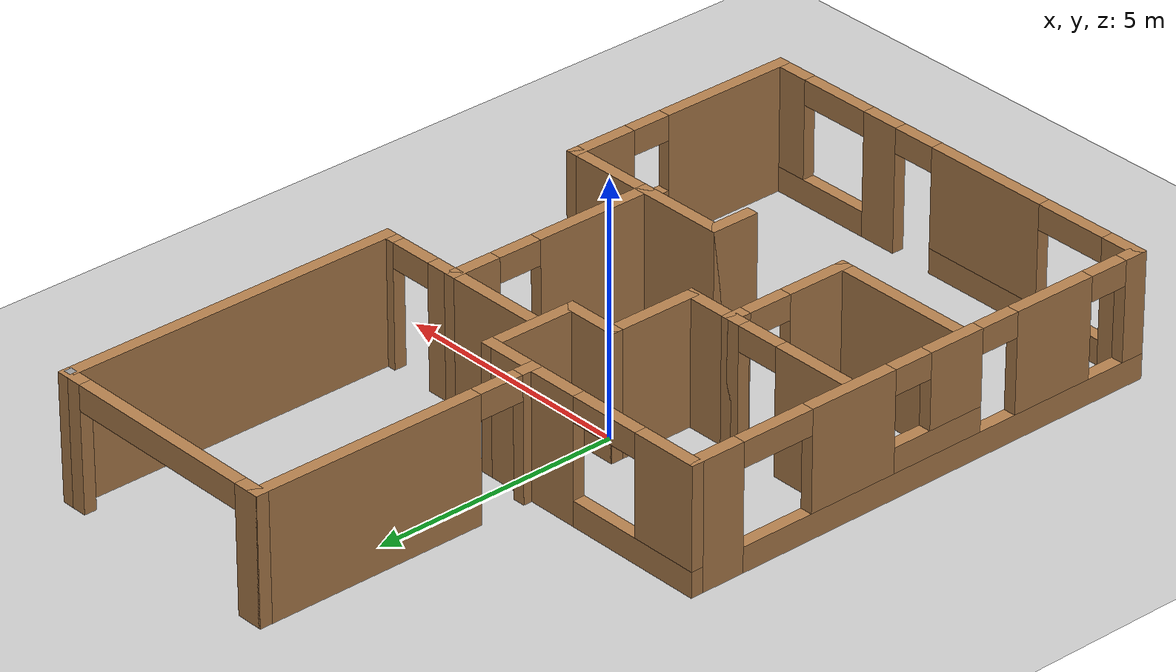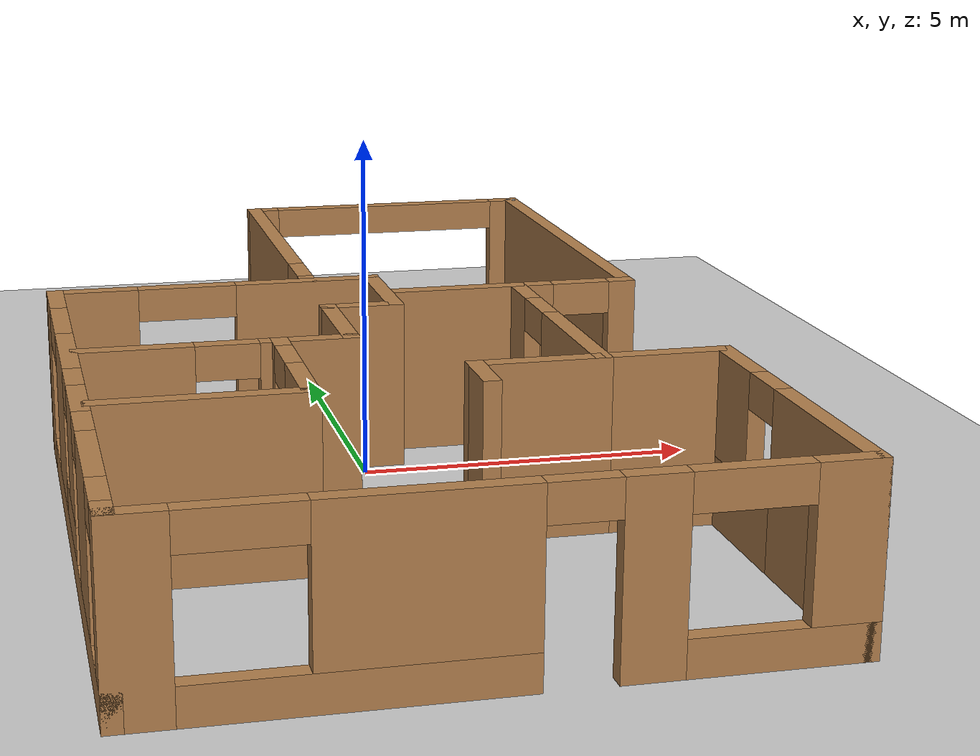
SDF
<sdf version="1.6">
 <world name="default">
  <model name="ground_plane">
   <static>1</static>
   <link name="link">
    <collision name="collision">
     <geometry><plane><normal>0 0 1</normal><size>100 100</size></plane></geometry>
     <surface><friction><ode><mu>100</mu><mu2>50</mu2></ode></friction></surface>
    </collision>
    <visual name="visual">
     <cast_shadows>0</cast_shadows>
     <geometry><plane><normal>0 0 1</normal><size>100 100</size></plane></geometry>
     <material>
      <script><uri>file://media/materials/scripts/gazebo.material</uri><name>Gazebo/Grey</name></script>
     </material>
    </visual>
   </link>
  </model>
  <model name="mybuilding">
   <link name="Wall_0">
    <pose>1.95 7.875 0 0 -0 3.14159</pose>
    <visual name="Wall_0_Visual_0">
     <pose>-2.27407 0 1.25 0 -0 0</pose>
     <geometry><box><size>0.551856 0.25 2.5</size></box></geometry>
     <material>
      <script><uri>file://media/materials/scripts/gazebo.material</uri><name>Gazebo/Wood</name></script>
      <ambient>1 1 1 1</ambient>
     </material>
     <meta><layer>0</layer></meta>
    </visual>
    <collision name="Wall_0_Collision_0">
     <geometry><box><size>0.551856 0.25 2.5</size></box></geometry>
     <pose>-2.27407 0 1.25 0 -0 0</pose>
    </collision>
    <visual name="Wall_0_Visual_1">
     <pose>2.27593 0 1.25 0 -0 0</pose>
     <geometry><box><size>0.548144 0.25 2.5</size></box></geometry>
     <material>
      <script><uri>file://media/materials/scripts/gazebo.material</uri><name>Gazebo/Wood</name></script>
      <ambient>1 1 1 1</ambient>
     </material>
     <meta><layer>0</layer></meta>
    </visual>
    <collision name="Wall_0_Collision_1">
     <geometry><box><size>0.548144 0.25 2.5</size></box></geometry>
     <pose>2.27593 0 1.25 0 -0 0</pose>
    </collision>
    <visual name="Wall_0_Visual_2">
     <pose>0.001856 0 2.25 0 -0 0</pose>
     <geometry><box><size>4 0.25 0.5</size></box></geometry>
     <material>
      <script><uri>file://media/materials/scripts/gazebo.material</uri><name>Gazebo/Wood</name></script>
      <ambient>1 1 1 1</ambient>
     </material>
     <meta><layer>0</layer></meta>
    </visual>
    <collision name="Wall_0_Collision_2">
     <geometry><box><size>4 0.25 0.5</size></box></geometry>
     <pose>0.001856 0 2.25 0 -0 0</pose>
    </collision>
   </link>
   <link name="Wall_1">
    <pose>-0.475 5 0 0 0 -1.5708</pose>
    <visual name="Wall_1_Visual_0">
     <pose>-0.6625 0 1.25 0 -0 0</pose>
     <geometry><box><size>4.675 0.25 2.5</size></box></geometry>
     <material>
      <script><uri>file://media/materials/scripts/gazebo.material</uri><name>Gazebo/Wood</name></script>
      <ambient>1 1 1 1</ambient>
     </material>
     <meta><layer>0</layer></meta>
    </visual>
    <collision name="Wall_1_Collision_0">
     <geometry><box><size>4.675 0.25 2.5</size></box></geometry>
     <pose>-0.6625 0 1.25 0 -0 0</pose>
    </collision>
    <visual name="Wall_1_Visual_1">
     <pose>2.7875 0 1.25 0 -0 0</pose>
     <geometry><box><size>0.425 0.25 2.5</size></box></geometry>
     <material>
      <script><uri>file://media/materials/scripts/gazebo.material</uri><name>Gazebo/Wood</name></script>
      <ambient>1 1 1 1</ambient>
     </material>
     <meta><layer>0</layer></meta>
    </visual>
    <collision name="Wall_1_Collision_1">
     <geometry><box><size>0.425 0.25 2.5</size></box></geometry>
     <pose>2.7875 0 1.25 0 -0 0</pose>
    </collision>
    <visual name="Wall_1_Visual_2">
     <pose>2.125 0 2.25 0 -0 0</pose>
     <geometry><box><size>0.9 0.25 0.5</size></box></geometry>
     <material>
      <script><uri>file://media/materials/scripts/gazebo.material</uri><name>Gazebo/Wood</name></script>
      <ambient>1 1 1 1</ambient>
     </material>
     <meta><layer>0</layer></meta>
    </visual>
    <collision name="Wall_1_Collision_2">
     <geometry><box><size>0.9 0.25 0.5</size></box></geometry>
     <pose>2.125 0 2.25 0 -0 0</pose>
    </collision>
   </link>
   <link name="Wall_10">
    <pose>-4.375 -2.875 0 0 0 -1.5708</pose>
    <visual name="Wall_10_Visual_0">
     <pose>-4.56217 0 1.25 0 -0 0</pose>
     <geometry><box><size>1.12566 0.25 2.5</size></box></geometry>
     <material>
      <script><uri>file://media/materials/scripts/gazebo.material</uri><name>Gazebo/Wood</name></script>
      <ambient>1 1 1 1</ambient>
     </material>
     <meta><layer>0</layer></meta>
    </visual>
    <collision name="Wall_10_Collision_0">
     <geometry><box><size>1.12566 0.25 2.5</size></box></geometry>
     <pose>-4.56217 0 1.25 0 -0 0</pose>
    </collision>
    <visual name="Wall_10_Visual_1">
     <pose>0.562832 0 0.25 0 -0 0</pose>
     <geometry><box><size>9.12434 0.25 0.5</size></box></geometry>
     <material>
      <script><uri>file://media/materials/scripts/gazebo.material</uri><name>Gazebo/Wood</name></script>
      <ambient>1 1 1 1</ambient>
     </material>
     <meta><layer>0</layer></meta>
    </visual>
    <collision name="Wall_10_Collision_1">
     <geometry><box><size>9.12434 0.25 0.5</size></box></geometry>
     <pose>0.562832 0 0.25 0 -0 0</pose>
    </collision>
    <visual name="Wall_10_Visual_2">
     <pose>-1.57467 0 1.5 0 -0 0</pose>
     <geometry><box><size>1.84934 0.25 2</size></box></geometry>
     <material>
      <script><uri>file://media/materials/scripts/gazebo.material</uri><name>Gazebo/Wood</name></script>
      <ambient>1 1 1 1</ambient>
     </material>
     <meta><layer>0</layer></meta>
    </visual>
    <collision name="Wall_10_Collision_2">
     <geometry><box><size>1.84934 0.25 2</size></box></geometry>
     <pose>-1.57467 0 1.5 0 -0 0</pose>
    </collision>
    <visual name="Wall_10_Visual_3">
     <pose>2.98281 0 1.5 0 -0 0</pose>
     <geometry><box><size>1.72544 0.25 2</size></box></geometry>
     <material>
      <script><uri>file://media/materials/scripts/gazebo.material</uri><name>Gazebo/Wood</name></script>
      <ambient>1 1 1 1</ambient>
     </material>
     <meta><layer>0</layer></meta>
    </visual>
    <collision name="Wall_10_Collision_3">
     <geometry><box><size>1.72544 0.25 2</size></box></geometry>
     <pose>2.98281 0 1.5 0 -0 0</pose>
    </collision>
    <visual name="Wall_10_Visual_4">
     <pose>4.88526 0 1.5 0 -0 0</pose>
     <geometry><box><size>0.479475 0.25 2</size></box></geometry>
     <material>
      <script><uri>file://media/materials/scripts/gazebo.material</uri><name>Gazebo/Wood</name></script>
      <ambient>1 1 1 1</ambient>
     </material>
     <meta><layer>0</layer></meta>
    </visual>
    <collision name="Wall_10_Collision_4">
     <geometry><box><size>0.479475 0.25 2</size></box></geometry>
     <pose>4.88526 0 1.5 0 -0 0</pose>
    </collision>
    <visual name="Wall_10_Visual_5">
     <pose>0.335043 0 0.75 0 -0 0</pose>
     <geometry><box><size>1.97009 0.25 0.5</size></box></geometry>
     <material>
      <script><uri>file://media/materials/scripts/gazebo.material</uri><name>Gazebo/Wood</name></script>
      <ambient>1 1 1 1</ambient>
     </material>
     <meta><layer>0</layer></meta>
    </visual>
    <collision name="Wall_10_Collision_5">
     <geometry><box><size>1.97009 0.25 0.5</size></box></geometry>
     <pose>0.335043 0 0.75 0 -0 0</pose>
    </collision>
    <visual name="Wall_10_Visual_6">
     <pose>0.735043 0 1.75 0 -0 0</pose>
     <geometry><box><size>1.17009 0.25 1.5</size></box></geometry>
     <material>
      <script><uri>file://media/materials/scripts/gazebo.material</uri><name>Gazebo/Wood</name></script>
      <ambient>1 1 1 1</ambient>
     </material>
     <meta><layer>0</layer></meta>
    </visual>
    <collision name="Wall_10_Collision_6">
     <geometry><box><size>1.17009 0.25 1.5</size></box></geometry>
     <pose>0.735043 0 1.75 0 -0 0</pose>
    </collision>
    <visual name="Wall_10_Visual_7">
     <pose>-3.24934 0 2.25 0 -0 0</pose>
     <geometry><box><size>1.5 0.25 0.5</size></box></geometry>
     <material>
      <script><uri>file://media/materials/scripts/gazebo.material</uri><name>Gazebo/Wood</name></script>
      <ambient>1 1 1 1</ambient>
     </material>
     <meta><layer>0</layer></meta>
    </visual>
    <collision name="Wall_10_Collision_7">
     <geometry><box><size>1.5 0.25 0.5</size></box></geometry>
     <pose>-3.24934 0 2.25 0 -0 0</pose>
    </collision>
    <visual name="Wall_10_Visual_8">
     <pose>-0.25 0 2.25 0 -0 0</pose>
     <geometry><box><size>0.8 0.25 0.5</size></box></geometry>
     <material>
      <script><uri>file://media/materials/scripts/gazebo.material</uri><name>Gazebo/Wood</name></script>
      <ambient>1 1 1 1</ambient>
     </material>
     <meta><layer>0</layer></meta>
    </visual>
    <collision name="Wall_10_Collision_8">
     <geometry><box><size>0.8 0.25 0.5</size></box></geometry>
     <pose>-0.25 0 2.25 0 -0 0</pose>
    </collision>
    <visual name="Wall_10_Visual_9">
     <pose>4.24552 0 2.25 0 -0 0</pose>
     <geometry><box><size>0.8 0.25 0.5</size></box></geometry>
     <material>
      <script><uri>file://media/materials/scripts/gazebo.material</uri><name>Gazebo/Wood</name></script>
      <ambient>1 1 1 1</ambient>
     </material>
     <meta><layer>0</layer></meta>
    </visual>
    <collision name="Wall_10_Collision_9">
     <geometry><box><size>0.8 0.25 0.5</size></box></geometry>
     <pose>4.24552 0 2.25 0 -0 0</pose>
    </collision>
    <visual name="Wall_10_Visual_10">
     <pose>1.72009 0 2.25 0 -0 0</pose>
     <geometry><box><size>0.8 0.25 0.5</size></box></geometry>
     <material>
      <script><uri>file://media/materials/scripts/gazebo.material</uri><name>Gazebo/Wood</name></script>
      <ambient>1 1 1 1</ambient>
     </material>
     <meta><layer>0</layer></meta>
    </visual>
    <collision name="Wall_10_Collision_10">
     <geometry><box><size>0.8 0.25 0.5</size></box></geometry>
     <pose>1.72009 0 2.25 0 -0 0</pose>
    </collision>
   </link>
   <link name="Wall_11">
    <pose>0 -7.875 0 0 -0 0</pose>
    <visual name="Wall_11_Visual_0">
     <pose>-4.09506 0 1.25 0 -0 0</pose>
     <geometry><box><size>0.809873 0.25 2.5</size></box></geometry>
     <material>
      <script><uri>file://media/materials/scripts/gazebo.material</uri><name>Gazebo/Wood</name></script>
      <ambient>1 1 1 1</ambient>
     </material>
     <meta><layer>0</layer></meta>
    </visual>
    <collision name="Wall_11_Collision_0">
     <geometry><box><size>0.809873 0.25 2.5</size></box></geometry>
     <pose>-4.09506 0 1.25 0 -0 0</pose>
    </collision>
    <visual name="Wall_11_Visual_1">
     <pose>1.7214 0 1.25 0 -0 0</pose>
     <geometry><box><size>0.792805 0.25 2.5</size></box></geometry>
     <material>
      <script><uri>file://media/materials/scripts/gazebo.material</uri><name>Gazebo/Wood</name></script>
      <ambient>1 1 1 1</ambient>
     </material>
     <meta><layer>0</layer></meta>
    </visual>
    <collision name="Wall_11_Collision_1">
     <geometry><box><size>0.792805 0.25 2.5</size></box></geometry>
     <pose>1.7214 0 1.25 0 -0 0</pose>
    </collision>
    <visual name="Wall_11_Visual_2">
     <pose>-1.63256 0 0.25 0 -0 0</pose>
     <geometry><box><size>4.11513 0.25 0.5</size></box></geometry>
     <material>
      <script><uri>file://media/materials/scripts/gazebo.material</uri><name>Gazebo/Wood</name></script>
      <ambient>1 1 1 1</ambient>
     </material>
     <meta><layer>0</layer></meta>
    </visual>
    <collision name="Wall_11_Collision_2">
     <geometry><box><size>4.11513 0.25 0.5</size></box></geometry>
     <pose>-1.63256 0 0.25 0 -0 0</pose>
    </collision>
    <visual name="Wall_11_Visual_3">
     <pose>3.3089 0 0.25 0 -0 0</pose>
     <geometry><box><size>2.38219 0.25 0.5</size></box></geometry>
     <material>
      <script><uri>file://media/materials/scripts/gazebo.material</uri><name>Gazebo/Wood</name></script>
      <ambient>1 1 1 1</ambient>
     </material>
     <meta><layer>0</layer></meta>
    </visual>
    <collision name="Wall_11_Collision_3">
     <geometry><box><size>2.38219 0.25 0.5</size></box></geometry>
     <pose>3.3089 0 0.25 0 -0 0</pose>
    </collision>
    <visual name="Wall_11_Visual_4">
     <pose>-0.882564 0 1.5 0 -0 0</pose>
     <geometry><box><size>2.61513 0.25 2</size></box></geometry>
     <material>
      <script><uri>file://media/materials/scripts/gazebo.material</uri><name>Gazebo/Wood</name></script>
      <ambient>1 1 1 1</ambient>
     </material>
     <meta><layer>0</layer></meta>
    </visual>
    <collision name="Wall_11_Collision_4">
     <geometry><box><size>2.61513 0.25 2</size></box></geometry>
     <pose>-0.882564 0 1.5 0 -0 0</pose>
    </collision>
    <visual name="Wall_11_Visual_5">
     <pose>-0.882564 0 1.5 0 -0 0</pose>
     <geometry><box><size>2.61513 0.25 2</size></box></geometry>
     <material>
      <script><uri>file://media/materials/scripts/gazebo.material</uri><name>Gazebo/Wood</name></script>
      <ambient>1 1 1 1</ambient>
     </material>
     <meta><layer>0</layer></meta>
    </visual>
    <collision name="Wall_11_Collision_5">
     <geometry><box><size>2.61513 0.25 2</size></box></geometry>
     <pose>-0.882564 0 1.5 0 -0 0</pose>
    </collision>
    <visual name="Wall_11_Visual_6">
     <pose>4.0589 0 1.5 0 -0 0</pose>
     <geometry><box><size>0.882195 0.25 2</size></box></geometry>
     <material>
      <script><uri>file://media/materials/scripts/gazebo.material</uri><name>Gazebo/Wood</name></script>
      <ambient>1 1 1 1</ambient>
     </material>
     <meta><layer>0</layer></meta>
    </visual>
    <collision name="Wall_11_Collision_6">
     <geometry><box><size>0.882195 0.25 2</size></box></geometry>
     <pose>4.0589 0 1.5 0 -0 0</pose>
    </collision>
    <visual name="Wall_11_Visual_7">
     <pose>-2.94013 0 2.25 0 -0 0</pose>
     <geometry><box><size>1.5 0.25 0.5</size></box></geometry>
     <material>
      <script><uri>file://media/materials/scripts/gazebo.material</uri><name>Gazebo/Wood</name></script>
      <ambient>1 1 1 1</ambient>
     </material>
     <meta><layer>0</layer></meta>
    </visual>
    <collision name="Wall_11_Collision_7">
     <geometry><box><size>1.5 0.25 0.5</size></box></geometry>
     <pose>-2.94013 0 2.25 0 -0 0</pose>
    </collision>
    <visual name="Wall_11_Visual_8">
     <pose>2.86781 0 2.25 0 -0 0</pose>
     <geometry><box><size>1.5 0.25 0.5</size></box></geometry>
     <material>
      <script><uri>file://media/materials/scripts/gazebo.material</uri><name>Gazebo/Wood</name></script>
      <ambient>1 1 1 1</ambient>
     </material>
     <meta><layer>0</layer></meta>
    </visual>
    <collision name="Wall_11_Collision_8">
     <geometry><box><size>1.5 0.25 0.5</size></box></geometry>
     <pose>2.86781 0 2.25 0 -0 0</pose>
    </collision>
    <visual name="Wall_11_Visual_9">
     <pose>0.875 0 2.25 0 -0 0</pose>
     <geometry><box><size>0.9 0.25 0.5</size></box></geometry>
     <material>
      <script><uri>file://media/materials/scripts/gazebo.material</uri><name>Gazebo/Wood</name></script>
      <ambient>1 1 1 1</ambient>
     </material>
     <meta><layer>0</layer></meta>
    </visual>
    <collision name="Wall_11_Collision_9">
     <geometry><box><size>0.9 0.25 0.5</size></box></geometry>
     <pose>0.875 0 2.25 0 -0 0</pose>
    </collision>
    <visual name="Wall_11_Visual_10">
     <pose>0.875 0 2.25 0 -0 0</pose>
     <geometry><box><size>0.9 0.25 0.5</size></box></geometry>
     <material>
      <script><uri>file://media/materials/scripts/gazebo.material</uri><name>Gazebo/Wood</name></script>
      <ambient>1 1 1 1</ambient>
     </material>
     <meta><layer>0</layer></meta>
    </visual>
    <collision name="Wall_11_Collision_10">
     <geometry><box><size>0.9 0.25 0.5</size></box></geometry>
     <pose>0.875 0 2.25 0 -0 0</pose>
    </collision>
   </link>
   <link name="Wall_12">
    <pose>4.375 -5.5 0 0 -0 1.5708</pose>
    <visual name="Wall_12_Visual_0">
     <pose>-1.06859 0 1.25 0 -0 0</pose>
     <geometry><box><size>2.86282 0.25 2.5</size></box></geometry>
     <material>
      <script><uri>file://media/materials/scripts/gazebo.material</uri><name>Gazebo/Wood</name></script>
      <ambient>1 1 1 1</ambient>
     </material>
     <meta><layer>0</layer></meta>
    </visual>
    <collision name="Wall_12_Collision_0">
     <geometry><box><size>2.86282 0.25 2.5</size></box></geometry>
     <pose>-1.06859 0 1.25 0 -0 0</pose>
    </collision>
    <visual name="Wall_12_Visual_1">
     <pose>1.43141 0 0.5 0 -0 0</pose>
     <geometry><box><size>2.13718 0.25 1</size></box></geometry>
     <material>
      <script><uri>file://media/materials/scripts/gazebo.material</uri><name>Gazebo/Wood</name></script>
      <ambient>1 1 1 1</ambient>
     </material>
     <meta><layer>0</layer></meta>
    </visual>
    <collision name="Wall_12_Collision_1">
     <geometry><box><size>2.13718 0.25 1</size></box></geometry>
     <pose>1.43141 0 0.5 0 -0 0</pose>
    </collision>
    <visual name="Wall_12_Visual_2">
     <pose>1.83141 0 1.75 0 -0 0</pose>
     <geometry><box><size>1.33718 0.25 1.5</size></box></geometry>
     <material>
      <script><uri>file://media/materials/scripts/gazebo.material</uri><name>Gazebo/Wood</name></script>
      <ambient>1 1 1 1</ambient>
     </material>
     <meta><layer>0</layer></meta>
    </visual>
    <collision name="Wall_12_Collision_2">
     <geometry><box><size>1.33718 0.25 1.5</size></box></geometry>
     <pose>1.83141 0 1.75 0 -0 0</pose>
    </collision>
    <visual name="Wall_12_Visual_3">
     <pose>0.762824 0 2.25 0 -0 0</pose>
     <geometry><box><size>0.8 0.25 0.5</size></box></geometry>
     <material>
      <script><uri>file://media/materials/scripts/gazebo.material</uri><name>Gazebo/Wood</name></script>
      <ambient>1 1 1 1</ambient>
     </material>
     <meta><layer>0</layer></meta>
    </visual>
    <collision name="Wall_12_Collision_3">
     <geometry><box><size>0.8 0.25 0.5</size></box></geometry>
     <pose>0.762824 0 2.25 0 -0 0</pose>
    </collision>
   </link>
   <link name="Wall_13">
    <collision name="Wall_13_Collision">
     <geometry><box><size>2 0.25 2.5</size></box></geometry>
     <pose>0 0 1.25 0 -0 0</pose>
    </collision>
    <visual name="Wall_13_Visual">
     <pose>0 0 1.25 0 -0 0</pose>
     <geometry><box><size>2 0.25 2.5</size></box></geometry>
     <material>
      <script><uri>file://media/materials/scripts/gazebo.material</uri><name>Gazebo/Wood</name></script>
      <ambient>1 1 1 1</ambient>
     </material>
     <meta><layer>0</layer></meta>
    </visual>
    <pose>3.5 -3.125 0 0 -0 3.14159</pose>
   </link>
   <link name="Wall_14">
    <pose>2.625 -1 0 0 -0 1.5708</pose>
    <visual name="Wall_14_Visual_0">
     <pose>-0.957655 0 1.25 0 -0 0</pose>
     <geometry><box><size>2.58469 0.25 2.5</size></box></geometry>
     <material>
      <script><uri>file://media/materials/scripts/gazebo.material</uri><name>Gazebo/Wood</name></script>
      <ambient>1 1 1 1</ambient>
     </material>
     <meta><layer>0</layer></meta>
    </visual>
    <collision name="Wall_14_Collision_0">
     <geometry><box><size>2.58469 0.25 2.5</size></box></geometry>
     <pose>-0.957655 0 1.25 0 -0 0</pose>
    </collision>
    <visual name="Wall_14_Visual_1">
     <pose>1.74235 0 1.25 0 -0 0</pose>
     <geometry><box><size>1.01531 0.25 2.5</size></box></geometry>
     <material>
      <script><uri>file://media/materials/scripts/gazebo.material</uri><name>Gazebo/Wood</name></script>
      <ambient>1 1 1 1</ambient>
     </material>
     <meta><layer>0</layer></meta>
    </visual>
    <collision name="Wall_14_Collision_1">
     <geometry><box><size>1.01531 0.25 2.5</size></box></geometry>
     <pose>1.74235 0 1.25 0 -0 0</pose>
    </collision>
    <visual name="Wall_14_Visual_2">
     <pose>0.78469 0 2.25 0 -0 0</pose>
     <geometry><box><size>0.9 0.25 0.5</size></box></geometry>
     <material>
      <script><uri>file://media/materials/scripts/gazebo.material</uri><name>Gazebo/Wood</name></script>
      <ambient>1 1 1 1</ambient>
     </material>
     <meta><layer>0</layer></meta>
    </visual>
    <collision name="Wall_14_Collision_2">
     <geometry><box><size>0.9 0.25 0.5</size></box></geometry>
     <pose>0.78469 0 2.25 0 -0 0</pose>
    </collision>
   </link>
   <link name="Wall_153">
    <pose>-1.475 -2.625 0 0 0 -1.5708</pose>
    <visual name="Wall_153_Visual_0">
     <pose>-1.1625 0 1.25 0 -0 0</pose>
     <geometry><box><size>0.425 0.25 2.5</size></box></geometry>
     <material>
      <script><uri>file://media/materials/scripts/gazebo.material</uri><name>Gazebo/Wood</name></script>
      <ambient>1 1 1 1</ambient>
     </material>
     <meta><layer>0</layer></meta>
    </visual>
    <collision name="Wall_153_Collision_0">
     <geometry><box><size>0.425 0.25 2.5</size></box></geometry>
     <pose>-1.1625 0 1.25 0 -0 0</pose>
    </collision>
    <visual name="Wall_153_Visual_1">
     <pose>0.6625 0 1.25 0 -0 0</pose>
     <geometry><box><size>1.425 0.25 2.5</size></box></geometry>
     <material>
      <script><uri>file://media/materials/scripts/gazebo.material</uri><name>Gazebo/Wood</name></script>
      <ambient>1 1 1 1</ambient>
     </material>
     <meta><layer>0</layer></meta>
    </visual>
    <collision name="Wall_153_Collision_1">
     <geometry><box><size>1.425 0.25 2.5</size></box></geometry>
     <pose>0.6625 0 1.25 0 -0 0</pose>
    </collision>
    <visual name="Wall_153_Visual_2">
     <pose>-0.5 0 2.25 0 -0 0</pose>
     <geometry><box><size>0.9 0.25 0.5</size></box></geometry>
     <material>
      <script><uri>file://media/materials/scripts/gazebo.material</uri><name>Gazebo/Wood</name></script>
      <ambient>1 1 1 1</ambient>
     </material>
     <meta><layer>0</layer></meta>
    </visual>
    <collision name="Wall_153_Collision_2">
     <geometry><box><size>0.9 0.25 0.5</size></box></geometry>
     <pose>-0.5 0 2.25 0 -0 0</pose>
    </collision>
   </link>
   <link name="Wall_154">
    <collision name="Wall_154_Collision">
     <geometry><box><size>3 0.25 2.5</size></box></geometry>
     <pose>0 0 1.25 0 -0 0</pose>
    </collision>
    <visual name="Wall_154_Visual">
     <pose>0 0 1.25 0 -0 0</pose>
     <geometry><box><size>3 0.25 2.5</size></box></geometry>
     <material>
      <script><uri>file://media/materials/scripts/gazebo.material</uri><name>Gazebo/Wood</name></script>
      <ambient>1 1 1 1</ambient>
     </material>
     <meta><layer>0</layer></meta>
    </visual>
    <pose>-2.85 -3.875 0 0 -0 3.14159</pose>
   </link>
   <link name="Wall_156">
    <collision name="Wall_156_Collision">
     <geometry><box><size>2 0.25 2.5</size></box></geometry>
     <pose>0 0 1.25 0 -0 0</pose>
    </collision>
    <visual name="Wall_156_Visual">
     <pose>0 0 1.25 0 -0 0</pose>
     <geometry><box><size>2 0.25 2.5</size></box></geometry>
     <material>
      <script><uri>file://media/materials/scripts/gazebo.material</uri><name>Gazebo/Wood</name></script>
      <ambient>1 1 1 1</ambient>
     </material>
     <meta><layer>0</layer></meta>
    </visual>
    <pose>1.75 -3.125 0 0 -0 3.14159</pose>
   </link>
   <link name="Wall_157">
    <collision name="Wall_157_Collision">
     <geometry><box><size>1 0.25 2.5</size></box></geometry>
     <pose>0 0 1.25 0 -0 0</pose>
    </collision>
    <visual name="Wall_157_Visual">
     <pose>0 0 1.25 0 -0 0</pose>
     <geometry><box><size>1 0.25 2.5</size></box></geometry>
     <material>
      <script><uri>file://media/materials/scripts/gazebo.material</uri><name>Gazebo/Wood</name></script>
      <ambient>1 1 1 1</ambient>
     </material>
     <meta><layer>0</layer></meta>
    </visual>
    <pose>0.875 -3.5 0 0 0 -1.5708</pose>
   </link>
   <link name="Wall_16">
    <collision name="Wall_16_Collision">
     <geometry><box><size>7 0.25 2.5</size></box></geometry>
     <pose>0 0 1.25 0 -0 0</pose>
    </collision>
    <visual name="Wall_16_Visual">
     <pose>0 0 1.25 0 -0 0</pose>
     <geometry><box><size>7 0.25 2.5</size></box></geometry>
     <material>
      <script><uri>file://media/materials/scripts/gazebo.material</uri><name>Gazebo/Wood</name></script>
      <ambient>1 1 1 1</ambient>
     </material>
     <meta><layer>0</layer></meta>
    </visual>
    <pose>4.375 4.5 0 0 -0 1.5708</pose>
   </link>
   <link name="Wall_17">
    <collision name="Wall_17_Collision">
     <geometry><box><size>0.15 0.15 2.5</size></box></geometry>
     <pose>0 0 1.25 0 -0 0</pose>
    </collision>
    <visual name="Wall_17_Visual">
     <pose>0 0 1.25 0 -0 0</pose>
     <geometry><box><size>0.15 0.15 2.5</size></box></geometry>
     <material>
      <script><uri>file://media/materials/scripts/gazebo.material</uri><name>Gazebo/Grey</name></script>
      <ambient>1 1 1 1</ambient>
     </material>
     <meta><layer>0</layer></meta>
    </visual>
    <pose>4.375 7.83421 0 0 -0 0</pose>
   </link>
   <link name="Wall_18">
    <collision name="Wall_18_Collision">
     <geometry><box><size>0.15 0.15 2.5</size></box></geometry>
     <pose>0 0 1.25 0 -0 0</pose>
    </collision>
    <visual name="Wall_18_Visual">
     <pose>0 0 1.25 0 -0 0</pose>
     <geometry><box><size>0.15 0.15 2.5</size></box></geometry>
     <material>
      <script><uri>file://media/materials/scripts/gazebo.material</uri><name>Gazebo/Grey</name></script>
      <ambient>1 1 1 1</ambient>
     </material>
     <meta><layer>0</layer></meta>
    </visual>
    <pose>4.375 7.83421 0 0 -0 0</pose>
   </link>
   <link name="Wall_20">
    <collision name="Wall_20_Collision">
     <geometry><box><size>2 0.25 2.5</size></box></geometry>
     <pose>0 0 1.25 0 -0 0</pose>
    </collision>
    <visual name="Wall_20_Visual">
     <pose>0 0 1.25 0 -0 0</pose>
     <geometry><box><size>2 0.25 2.5</size></box></geometry>
     <material>
      <script><uri>file://media/materials/scripts/gazebo.material</uri><name>Gazebo/Wood</name></script>
      <ambient>1 1 1 1</ambient>
     </material>
     <meta><layer>0</layer></meta>
    </visual>
    <pose>0.525 1.25 0 0 0 -1.5708</pose>
   </link>
   <link name="Wall_22">
    <collision name="Wall_22_Collision">
     <geometry><box><size>2.25 0.25 2.5</size></box></geometry>
     <pose>0 0 1.25 0 -0 0</pose>
    </collision>
    <visual name="Wall_22_Visual">
     <pose>0 0 1.25 0 -0 0</pose>
     <geometry><box><size>2.25 0.25 2.5</size></box></geometry>
     <material>
      <script><uri>file://media/materials/scripts/gazebo.material</uri><name>Gazebo/Wood</name></script>
      <ambient>1 1 1 1</ambient>
     </material>
     <meta><layer>0</layer></meta>
    </visual>
    <pose>1.625 1.125 0 0 -0 3.14159</pose>
   </link>
   <link name="Wall_24">
    <pose>3.5 1.125 0 0 -0 3.14159</pose>
    <visual name="Wall_24_Visual_0">
     <pose>-0.7875 0 1.25 0 -0 0</pose>
     <geometry><box><size>0.425 0.25 2.5</size></box></geometry>
     <material>
      <script><uri>file://media/materials/scripts/gazebo.material</uri><name>Gazebo/Wood</name></script>
      <ambient>1 1 1 1</ambient>
     </material>
     <meta><layer>0</layer></meta>
    </visual>
    <collision name="Wall_24_Collision_0">
     <geometry><box><size>0.425 0.25 2.5</size></box></geometry>
     <pose>-0.7875 0 1.25 0 -0 0</pose>
    </collision>
    <visual name="Wall_24_Visual_1">
     <pose>0.6625 0 1.25 0 -0 0</pose>
     <geometry><box><size>0.675 0.25 2.5</size></box></geometry>
     <material>
      <script><uri>file://media/materials/scripts/gazebo.material</uri><name>Gazebo/Wood</name></script>
      <ambient>1 1 1 1</ambient>
     </material>
     <meta><layer>0</layer></meta>
    </visual>
    <collision name="Wall_24_Collision_1">
     <geometry><box><size>0.675 0.25 2.5</size></box></geometry>
     <pose>0.6625 0 1.25 0 -0 0</pose>
    </collision>
    <visual name="Wall_24_Visual_2">
     <pose>-0.125 0 2.25 0 -0 0</pose>
     <geometry><box><size>0.9 0.25 0.5</size></box></geometry>
     <material>
      <script><uri>file://media/materials/scripts/gazebo.material</uri><name>Gazebo/Wood</name></script>
      <ambient>1 1 1 1</ambient>
     </material>
     <meta><layer>0</layer></meta>
    </visual>
    <collision name="Wall_24_Collision_2">
     <geometry><box><size>0.9 0.25 0.5</size></box></geometry>
     <pose>-0.125 0 2.25 0 -0 0</pose>
    </collision>
   </link>
   <link name="Wall_41">
    <collision name="Wall_41_Collision">
     <geometry><box><size>1.25 0.25 2.5</size></box></geometry>
     <pose>0 0 1.25 0 -0 0</pose>
    </collision>
    <visual name="Wall_41_Visual">
     <pose>0 0 1.25 0 -0 0</pose>
     <geometry><box><size>1.25 0.25 2.5</size></box></geometry>
     <material>
      <script><uri>file://media/materials/scripts/gazebo.material</uri><name>Gazebo/Wood</name></script>
      <ambient>1 1 1 1</ambient>
     </material>
     <meta><layer>0</layer></meta>
    </visual>
    <pose>0.025 0.375 0 0 -0 3.14159</pose>
   </link>
   <link name="Wall_42">
    <collision name="Wall_42_Collision">
     <geometry><box><size>2 0.25 2.5</size></box></geometry>
     <pose>0 0 1.25 0 -0 0</pose>
    </collision>
    <visual name="Wall_42_Visual">
     <pose>0 0 1.25 0 -0 0</pose>
     <geometry><box><size>2 0.25 2.5</size></box></geometry>
     <material>
      <script><uri>file://media/materials/scripts/gazebo.material</uri><name>Gazebo/Wood</name></script>
      <ambient>1 1 1 1</ambient>
     </material>
     <meta><layer>0</layer></meta>
    </visual>
    <pose>-0.475 -0.5 0 0 0 -1.5708</pose>
   </link>
   <link name="Wall_43">
    <pose>-2.35 -1.375 0 0 -0 3.14159</pose>
    <visual name="Wall_43_Visual_0">
     <pose>-1.29229 0 1.25 0 -0 0</pose>
     <geometry><box><size>1.41542 0.25 2.5</size></box></geometry>
     <material>
      <script><uri>file://media/materials/scripts/gazebo.material</uri><name>Gazebo/Wood</name></script>
      <ambient>1 1 1 1</ambient>
     </material>
     <meta><layer>0</layer></meta>
    </visual>
    <collision name="Wall_43_Collision_0">
     <geometry><box><size>1.41542 0.25 2.5</size></box></geometry>
     <pose>-1.29229 0 1.25 0 -0 0</pose>
    </collision>
    <visual name="Wall_43_Visual_1">
     <pose>1.15771 0 1.25 0 -0 0</pose>
     <geometry><box><size>1.68457 0.25 2.5</size></box></geometry>
     <material>
      <script><uri>file://media/materials/scripts/gazebo.material</uri><name>Gazebo/Wood</name></script>
      <ambient>1 1 1 1</ambient>
     </material>
     <meta><layer>0</layer></meta>
    </visual>
    <collision name="Wall_43_Collision_1">
     <geometry><box><size>1.68457 0.25 2.5</size></box></geometry>
     <pose>1.15771 0 1.25 0 -0 0</pose>
    </collision>
    <visual name="Wall_43_Visual_2">
     <pose>-0.134575 0 2.25 0 -0 0</pose>
     <geometry><box><size>0.9 0.25 0.5</size></box></geometry>
     <material>
      <script><uri>file://media/materials/scripts/gazebo.material</uri><name>Gazebo/Wood</name></script>
      <ambient>1 1 1 1</ambient>
     </material>
     <meta><layer>0</layer></meta>
    </visual>
    <collision name="Wall_43_Collision_2">
     <geometry><box><size>0.9 0.25 0.5</size></box></geometry>
     <pose>-0.134575 0 2.25 0 -0 0</pose>
    </collision>
   </link>
   <link name="Wall_9">
    <pose>-1.925 2.125 0 0 -0 3.14159</pose>
    <visual name="Wall_9_Visual_0">
     <pose>-1.4375 0 1.25 0 -0 0</pose>
     <geometry><box><size>2.275 0.25 2.5</size></box></geometry>
     <material>
      <script><uri>file://media/materials/scripts/gazebo.material</uri><name>Gazebo/Wood</name></script>
      <ambient>1 1 1 1</ambient>
     </material>
     <meta><layer>0</layer></meta>
    </visual>
    <collision name="Wall_9_Collision_0">
     <geometry><box><size>2.275 0.25 2.5</size></box></geometry>
     <pose>-1.4375 0 1.25 0 -0 0</pose>
    </collision>
    <visual name="Wall_9_Visual_1">
     <pose>1.1375 0 0.25 0 -0 0</pose>
     <geometry><box><size>2.875 0.25 0.5</size></box></geometry>
     <material>
      <script><uri>file://media/materials/scripts/gazebo.material</uri><name>Gazebo/Wood</name></script>
      <ambient>1 1 1 1</ambient>
     </material>
     <meta><layer>0</layer></meta>
    </visual>
    <collision name="Wall_9_Collision_1">
     <geometry><box><size>2.875 0.25 0.5</size></box></geometry>
     <pose>1.1375 0 0.25 0 -0 0</pose>
    </collision>
    <visual name="Wall_9_Visual_2">
     <pose>1.8875 0 1.5 0 -0 0</pose>
     <geometry><box><size>1.375 0.25 2</size></box></geometry>
     <material>
      <script><uri>file://media/materials/scripts/gazebo.material</uri><name>Gazebo/Wood</name></script>
      <ambient>1 1 1 1</ambient>
     </material>
     <meta><layer>0</layer></meta>
    </visual>
    <collision name="Wall_9_Collision_2">
     <geometry><box><size>1.375 0.25 2</size></box></geometry>
     <pose>1.8875 0 1.5 0 -0 0</pose>
    </collision>
    <visual name="Wall_9_Visual_3">
     <pose>0.45 0 2.25 0 -0 0</pose>
     <geometry><box><size>1.5 0.25 0.5</size></box></geometry>
     <material>
      <script><uri>file://media/materials/scripts/gazebo.material</uri><name>Gazebo/Wood</name></script>
      <ambient>1 1 1 1</ambient>
     </material>
     <meta><layer>0</layer></meta>
    </visual>
    <collision name="Wall_9_Collision_3">
     <geometry><box><size>1.5 0.25 0.5</size></box></geometry>
     <pose>0.45 0 2.25 0 -0 0</pose>
    </collision>
   </link>
   <static>1</static>
  </model>
  <model name="cabinet">
   <static>1</static>
   <link name="cabinet_bottom_plate">
    <inertial>
     <pose>0 0 -1 0 -0 0</pose>
     <inertia><ixx>2.05</ixx><ixy>0</ixy><ixz>0</ixz><iyy>2.05</iyy><iyz>0</iyz><izz>2.05</izz></inertia>
     <mass>25</mass>
    </inertial>
    <collision name="cabinet_bottom_plate_geom">
     <pose>0 0 0.01 0 -0 0</pose>
     <geometry><box><size>0.45 0.45 0.02</size></box></geometry>
    </collision>
    <visual name="cabinet_bottom_plate_geom_visual">
     <pose>0 0 0.01 0 -0 0</pose>
     <geometry><box><size>0.45 0.45 0.02</size></box></geometry>
     <material>
      <script><uri>file://media/materials/scripts/gazebo.material</uri><name>Gazebo/Wood</name></script>
     </material>
    </visual>
    <collision name="cabinet_bottom_plate_geom_cabinet_back_plate">
     <pose>0.235 0 0.51 0 -0 0</pose>
     <geometry><box><size>0.02 0.45 1.02</size></box></geometry>
    </collision>
    <visual name="cabinet_bottom_plate_geom_cabinet_back_plate_visual">
     <pose>0.235 0 0.51 0 -0 0</pose>
     <geometry><box><size>0.02 0.45 1.02</size></box></geometry>
     <material>
      <script><uri>file://media/materials/scripts/gazebo.material</uri><name>Gazebo/Wood</name></script>
     </material>
    </visual>
    <collision name="cabinet_bottom_plate_geom_cabinet_left_plate">
     <pose>0 0.235 0.51 0 -0 0</pose>
     <geometry><box><size>0.45 0.02 1.02</size></box></geometry>
    </collision>
    <visual name="cabinet_bottom_plate_geom_cabinet_left_plate_visual">
     <pose>0 0.235 0.51 0 -0 0</pose>
     <geometry><box><size>0.45 0.02 1.02</size></box></geometry>
     <material>
      <script><uri>file://media/materials/scripts/gazebo.material</uri><name>Gazebo/Wood</name></script>
     </material>
    </visual>
    <collision name="cabinet_bottom_plate_geom_cabinet_middle_plate">
     <pose>0 0 0.51 0 -0 0</pose>
     <geometry><box><size>0.45 0.45 0.02</size></box></geometry>
    </collision>
    <visual name="cabinet_bottom_plate_geom_cabinet_middle_plate_visual">
     <pose>0 0 0.51 0 -0 0</pose>
     <geometry><box><size>0.45 0.45 0.02</size></box></geometry>
     <material>
      <script><uri>file://media/materials/scripts/gazebo.material</uri><name>Gazebo/Wood</name></script>
     </material>
    </visual>
    <collision name="cabinet_bottom_plate_geom_cabinet_right_plate">
     <pose>0 -0.235 0.51 0 -0 0</pose>
     <geometry><box><size>0.45 0.02 1.02</size></box></geometry>
    </collision>
    <visual name="cabinet_bottom_plate_geom_cabinet_right_plate_visual">
     <pose>0 -0.235 0.51 0 -0 0</pose>
     <geometry><box><size>0.45 0.02 1.02</size></box></geometry>
     <material>
      <script><uri>file://media/materials/scripts/gazebo.material</uri><name>Gazebo/Wood</name></script>
     </material>
    </visual>
    <collision name="cabinet_bottom_plate_geom_cabinet_top_plate">
     <pose>0 0 1.01 0 -0 0</pose>
     <geometry><box><size>0.45 0.45 0.02</size></box></geometry>
    </collision>
    <visual name="cabinet_bottom_plate_geom_cabinet_top_plate_visual">
     <pose>0 0 1.01 0 -0 0</pose>
     <geometry><box><size>0.45 0.45 0.02</size></box></geometry>
     <material>
      <script><uri>file://media/materials/scripts/gazebo.material</uri><name>Gazebo/Wood</name></script>
     </material>
    </visual>
   </link>
   <pose>-3.95905 1.30742 0 0 -0 0</pose>
  </model>
  <model name="my_ball">
   <link name="link_0">
    <inertial>
     <mass>1</mass>
     <inertia><ixx>0.1</ixx><ixy>0</ixy><ixz>0</ixz><iyy>0.1</iyy><iyz>0</iyz><izz>0.1</izz></inertia>
    </inertial>
    <visual name="visual">
     <geometry><sphere><radius>0.1</radius></sphere></geometry>
     <material>
      <lighting>1</lighting>
      <script><uri>file://media/materials/scripts/gazebo.material</uri><name>Gazebo/Grey</name></script>
      <shader type="pixel"><normal_map>__default__</normal_map></shader>
      <ambient>1 1 1 1</ambient>
      <diffuse>1 1 1 1</diffuse>
      <specular>1 1 1 1</specular>
      <emissive>1 1 1 1</emissive>
     </material>
    </visual>
    <collision name="collision">
     <geometry><sphere><radius>0.1</radius></sphere></geometry>
     <surface>
      <friction>
       <ode><mu>1</mu><mu2>1</mu2><fdir1>0 0 0</fdir1><slip1>0</slip1><slip2>0</slip2></ode>
       <torsional>
        <coefficient>1</coefficient>
        <patch_radius>0</patch_radius>
        <surface_radius>0</surface_radius>
        <use_patch_radius>1</use_patch_radius>
        <ode><slip>0</slip></ode>
       </torsional>
      </friction>
      <bounce><restitution_coefficient>0</restitution_coefficient><threshold>1e+06</threshold></bounce>
      <contact>
       <collide_without_contact>0</collide_without_contact>
       <collide_without_contact_bitmask>1</collide_without_contact_bitmask>
       <collide_bitmask>1</collide_bitmask>
       <ode>
        <soft_cfm>0</soft_cfm>
        <soft_erp>0.2</soft_erp>
        <kp>1e+13</kp>
        <kd>1</kd>
        <max_vel>0.01</max_vel>
        <min_depth>0</min_depth>
       </ode>
       <bullet>
        <split_impulse>1</split_impulse>
        <split_impulse_penetration_threshold>-0.01</split_impulse_penetration_threshold>
        <soft_cfm>0</soft_cfm>
        <soft_erp>0.2</soft_erp>
        <kp>1e+13</kp>
        <kd>1</kd>
       </bullet>
      </contact>
     </surface>
    </collision>
   </link>
   <static>0</static>
   <pose>3.44578 0.007698 0.1 0 -0 0</pose>
  </model>
 </world>
</sdf>
